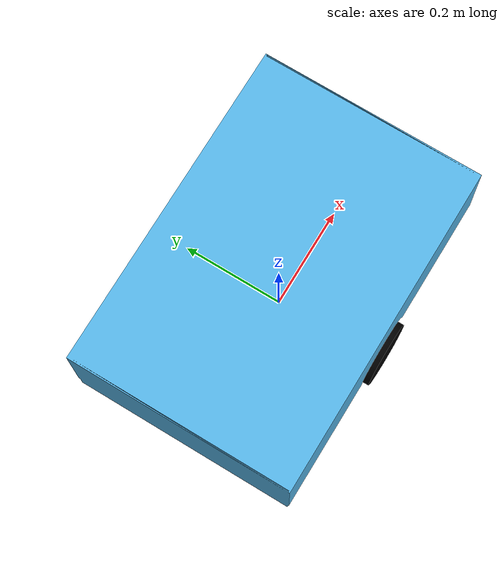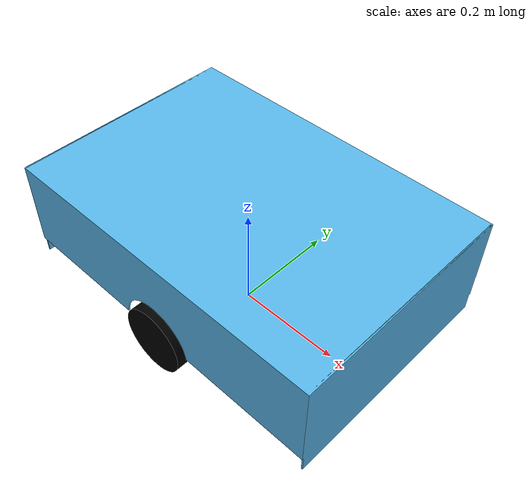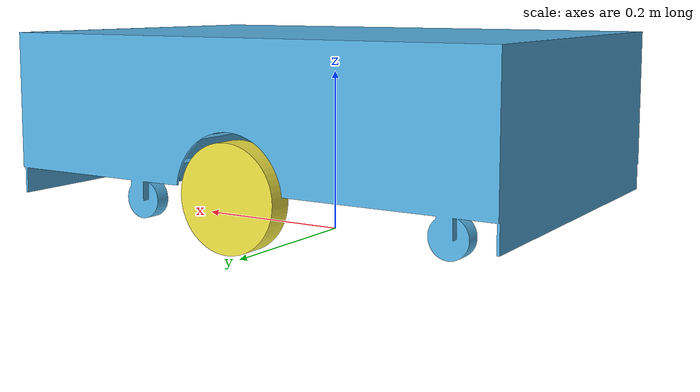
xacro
<?xml version="1.0"?>
<robot name="robomuse">

 <link name="base_footprint"/>

  <joint name="base_joint" type="fixed">
    <parent link="base_footprint"/>
    <child link="rm_chassis" />
    <origin xyz="0 0 0.010" rpy="0 0 0"/>
  </joint>

 <link name='rm_chassis'>

    <inertial>
      <mass value="10.0"/>
      <!--origin at CG-->
      <origin xyz="0 0 0.12" rpy=" 0 0 0"/>
      <inertia ixx="0.195" ixy="0" ixz="0" iyy="0.3839" iyz="0"  izz="0.4883"/>
    </inertial>

   <visual name='chassis_visual'>
      <origin xyz="0 0 0" rpy=" 0 0 0"/>
      <geometry>

        <mesh filename="package://rm_description/models/rm_chassis.dae" scale = ".1 .1 .1"/>
      </geometry>
    </visual>
    <collision name='rmcollision'>
      <origin xyz="0 0 0" rpy=" 0 0 0"/>
      <geometry>
        <mesh filename="package://rm_description/models/rm_chassis.dae" scale = ".1 .1 .1"/>
      </geometry>
    </collision>

 </link>

  <joint name="leftwheel_joint" type="continuous">
    <parent link="rm_chassis"/>
    <child link="rm_leftwheel" />
    <origin xyz="0 -.21 0.0625" rpy="0 0 0"/>
    <limit effort="100" velocity="0"/>
    <joint_properties damping="0.0" friction="0.0"/>
  </joint>

  <link name='rm_leftwheel'>

    <inertial>
      <mass value="0.1"/>
      <origin xyz="0 0 0" rpy=" 0 0 0"/>
      <inertia ixx="0.0001" ixy="0" ixz="0" iyy="0.0002" iyz="0"  izz="0.0001"/>
    </inertial>
    <visual name='leftwheel_visual'>
      <origin xyz="0 0 0" rpy=" 0 0 0"/>
      <geometry>
        <mesh filename="package://rm_description/models/rm_leftwheel.stl" scale = ".01 .01 .01"/>
      </geometry>
      <material name="black">
        <color rgba="0.0 0.0 0.0 1.0"/>
      </material>
    </visual>
    <collision name='leftwheel_collision'>
      <geometry>
        <mesh filename="package://rm_description/models/rm_leftwheel.stl" scale = ".01 .01 .01"/>
      </geometry>
    </collision>

  </link>

  <joint name="rightwheel_joint" type="continuous">
    <parent link="rm_chassis"/>
    <child link="rm_rightwheel" />
    <origin xyz="0 .21 0.0625" rpy="0 0 0"/>
    <limit effort="100" velocity="0"/>
    <joint_properties damping="0.0" friction="0.0"/>
  </joint>

  <link name='rm_rightwheel'>

    <inertial>
      <mass value="0.1"/>
      <origin xyz="0 0 0" rpy=" 0 0 0"/>
      <inertia ixx="0.0001" ixy="0" ixz="0" iyy="0.0002" iyz="0"  izz="0.0001"/>
    </inertial>
    <visual name='rightwheel_visual'>
      <origin xyz="0 0 0" rpy=" 0 0 0"/>
      <geometry>
        <mesh filename="package://rm_description/models/rm_leftwheel.stl" scale = ".01 .01 .01"/>
      </geometry>
    </visual>
    <collision name='rightwheel_collision'>
      <geometry>
        <mesh filename="package://rm_description/models/rm_leftwheel.stl" scale = ".01 .01 .01"/>
      </geometry>
    </collision>
  </link>

</robot>
